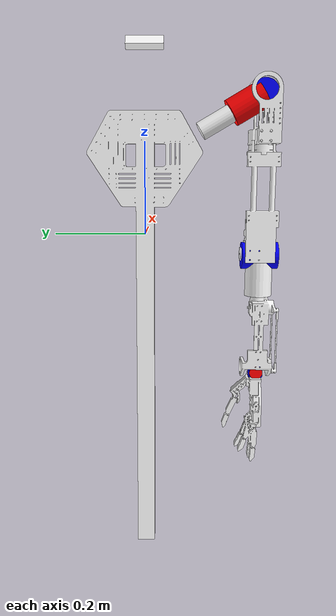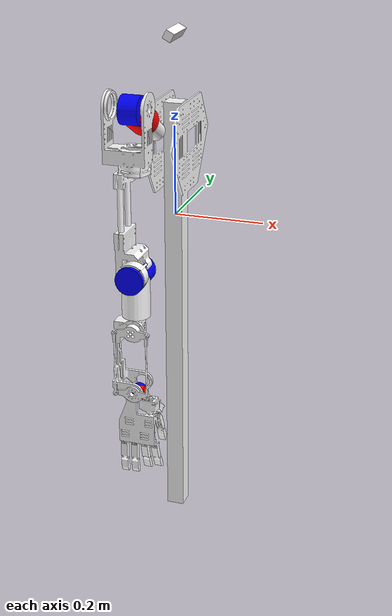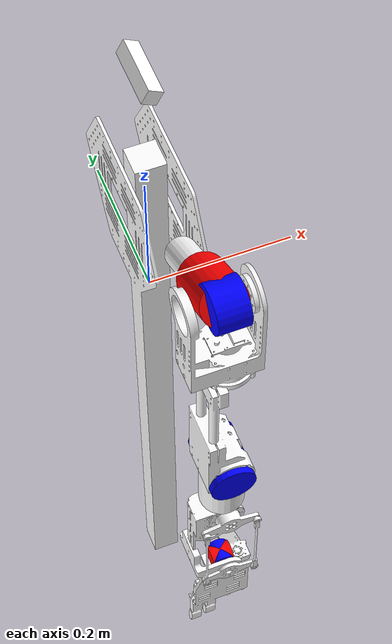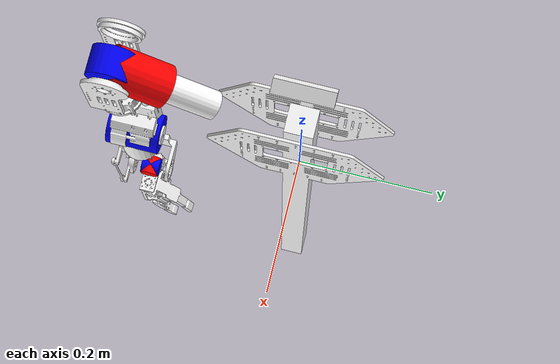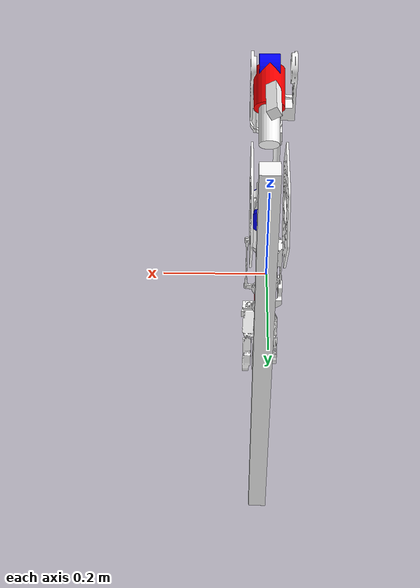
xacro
<?xml version="1.0"?>

<robot name="rx1" xmlns:xacro="http://ros.org/wiki/xacro">
    <xacro:property name="pi" value="3.1415" />
    <xacro:property name="motor_torque" value="50.0"/>
    <xacro:property name="motor_vec" value="15"/>

    <material name="red">
        <color rgba="1 0 0 1"/>
    </material>

    <material name="white">
        <color rgba="1 1 1 1"/>
    </material>

    <material name="blue">
        <color rgba="0 0 1 1"/>
    </material>

    <xacro:macro name="default_inertial" params="mass">
        <inertial>
            <mass value="${mass}" />
            <inertia ixx="1.0" ixy="0.0" ixz="0.0" iyy="1.0" iyz="0.0" izz="1.0" />
        </inertial>
    </xacro:macro>

    <link name="base_link">
        <inertial>
            <mass value="10.0" />
            <inertia ixx="0.1" ixy="0.0" ixz="0.0" iyy="0.04" iyz="0.0" izz="0.2" />
            <!--inertia ixx="1" ixy="0.0" ixz="0.0" iyy="1" iyz="0.0" izz="1" /-->
        </inertial>

        <visual>
            <geometry>
                <box size="0.02 0.02 0.5" />
            </geometry>
            <material name="white"/>
        </visual>
        <collision>
            <geometry>
                <box size="0.02 0.02 0.5" />
            </geometry>
        </collision>
    </link>

    <link name="camera_link">
        <inertial>
            <mass value="0.05" />
            <inertia ixx="4.16666667e-06" ixy="0.0" ixz="0.0" iyy="6.6666666667e-6" iyz="0.0" izz="04.16666667e-06" />
        </inertial>
        <visual>
            <geometry>
                <box size="0.02 0.08 0.02" />
            </geometry>
            <origin rpy="0 0 0" xyz="0 0 0"/>
            <material name="white"/>
        </visual>
        <collision>
            <geometry>
                <box size="0.03 0.12 0.02" />
            </geometry>
            <origin rpy="0 0 0" xyz="0 0 0"/>
        </collision>
    </link>
    <joint name="base2camera_joint" type="fixed">
        <origin xyz="0 0 0.40" rpy="0 0.5 0" />
        <parent link="base_link" />
        <child link="camera_link" />
    </joint>

    <link name="camera_color_optical_frame">
        <visual>
            <geometry>
                <box size="0.01 0.01 0.01" />
            </geometry>
            <origin rpy="0 0 0" xyz="0 0 0"/>
            <material name="white"/>
        </visual>
    </link>
    <joint name="camera2camera_joint" type="fixed">
        <origin xyz="0 0 0" rpy="-1.57 0 -1.57" />
        <parent link="camera_link" />
        <child link="camera_color_optical_frame" />
    </joint>

    <link name="torso_link">
        <inertial>
            <mass value="0.05" />
            <inertia ixx="4.16666667e-06" ixy="0.0" ixz="0.0" iyy="6.6666666667e-6" iyz="0.0" izz="04.16666667e-06" />
        </inertial>
        <visual>
            <geometry>
                <!--box size="0.03 0.12 0.02" /-->
                <mesh filename="package://rx1_description/meshes/torso_link_v2.stl"/>
            </geometry>
            <origin rpy="0 0 0" xyz="0 0 0"/>
            <material name="white"/>
        </visual>
        <collision>
            <geometry>
                <box size="0.03 0.12 0.02" />
            </geometry>
            <origin rpy="0 0 0" xyz="0 0 0"/>
        </collision>
    </link>
    <joint name="base2torso_joint" type="fixed">
        <origin xyz="0 0 0.26" rpy="0 0 0" />
        <parent link="base_link" />
        <child link="torso_link" />
    </joint>

    <link name="right_shoul_base_link">
        <inertial>
            <mass value="0.05" />
            <inertia ixx="4.16666667e-06" ixy="0.0" ixz="0.0" iyy="6.6666666667e-6" iyz="0.0" izz="04.16666667e-06" />
        </inertial>

        <visual>
            <geometry>
                <cylinder length="0.075" radius="0.02" />
            </geometry>
            <origin rpy="0 0 0" xyz="0 0 0.0375"/>
            <material name="white"/>
        </visual>
        <collision>
            <geometry>
                <cylinder length="0.075" radius="0.02" />
            </geometry>
            <origin rpy="0 0 0" xyz="0 0 0.0375"/>
        </collision>
    </link>
    <joint name="torso2right_shoul_base_joint" type="fixed">
        <origin xyz="0 -0.12 -0.04" rpy="${0.3333*pi} 0 0" />
        <parent link="torso_link" />
        <child link="right_shoul_base_link" />
    </joint>

    <link name="right_shoul_link">
        <visual>
            <geometry>
                <cylinder length="0.08" radius="0.03" />
            </geometry>
            <origin rpy="0 0 0" xyz="0 0 0.04"/>
            <material name="red"/>
        </visual>
        <collision>
            <geometry>
                <cylinder length="0.08" radius="0.03" />
            </geometry>
            <origin rpy="0 0 0" xyz="0 0 0.04"/>
        </collision>
    </link>
    <joint name="right_shoul_base2shoul_joint" type="revolute">
        <axis xyz="0 0 1" />
        <limit effort="${motor_torque}" lower="${-0.8*pi}" upper="${0.8*pi}" velocity="${motor_vec}"/>
        <origin xyz="0 0 0.075" rpy="0 0 0" />
        <parent link="right_shoul_base_link" />
        <child link="right_shoul_link" />
    </joint>

    <link name="right_shoul_rot_link">
        <visual>
            <geometry>
                <cylinder length="0.04" radius="0.03" />
            </geometry>
            <origin rpy="0 ${0.5*pi} 0" xyz="0 0 0"/>
            <material name="blue"/>
        </visual>
        <collision>
            <geometry>
                <cylinder length="0.04" radius="0.03" />
            </geometry>
            <origin rpy="0 ${0.5*pi} 0" xyz="0 0 0"/>
        </collision>
    </link>
    <joint name="right_shoul2shoul_rot_joint" type="revolute">
        <axis xyz="1 0 0" />
        <limit effort="${motor_torque}" lower="${-0.5*pi}" upper="${0.16*pi}" velocity="${motor_vec}"/>
        <origin xyz="0 0 0.08" rpy="${-0.3333*pi} 0 0" />
        <parent link="right_shoul_link" />
        <child link="right_shoul_rot_link" />
    </joint>

    <link name="right_upper_arm_link">
        <visual>
            <geometry>
                <!--cylinder length="0.085" radius="0.015" /-->
                <mesh filename="package://rx1_description/meshes/right_arm/right_upper_arm_link.stl"/>
            </geometry>
            <origin rpy="0 0 0" xyz="0 0 0"/>
            <material name="white"/>
        </visual>
        <collision>
            <geometry>
                <!--cylinder length="0.085" radius="0.015" /-->
                <mesh filename="package://rx1_description/meshes/right_arm/right_upper_arm_link.stl"/>
            </geometry>
            <origin rpy="0 0 0" xyz="0 0 0"/>
        </collision>
    </link>
    <joint name="right_shoul_rot2upper_arm_joint" type="fixed">
        <origin xyz="0 0 -0.0625" rpy="0 0 0" />
        <parent link="right_shoul_rot_link" />
        <child link="right_upper_arm_link" />
    </joint>

    <link name="right_armrot_link">
        <visual>
            <geometry>
                <!--cylinder length="0.22" radius="0.03" /-->
                <mesh filename="package://rx1_description/meshes/right_arm/right_elbow_link.stl"/>
            </geometry>
            <origin rpy="0 0 0" xyz="0 0 -0.11"/>
            <material name="white"/>
        </visual>
        <collision>
            <geometry>
                <cylinder length="0.22" radius="0.03" />
            </geometry>
            <origin rpy="0 0 0" xyz="0 0 -0.11"/>
        </collision>
    </link>
    <joint name="right_arm2armrot_joint" type="revolute">
        <axis xyz="0 0 1" />
        <limit effort="${motor_torque}" lower="${-0.5*pi}" upper="${0.5*pi}" velocity="${motor_vec}"/>
        <origin xyz="0 0 -0.0625" rpy="0 0 0" />
        <parent link="right_upper_arm_link" />
        <child link="right_armrot_link" />
    </joint>

    <link name="elbow_link">
        <visual>
            <geometry>
                <cylinder length="0.08" radius="0.03" />
            </geometry>
            <origin rpy="0 ${0.5*pi} -${0.5*pi}" xyz="0 0 0"/>
            <material name="blue"/>
        </visual>
        <collision>
            <geometry>
                <cylinder length="0.08" radius="0.03" />
            </geometry>
            <origin rpy="0 ${0.5*pi} -${0.5*pi}" xyz="0 0 0"/>
        </collision>
    </link>
    <joint name="right_armrot2elbow_joint" type="revolute">
        <axis xyz="0 1 0" />
        <limit effort="${motor_torque}" lower="${-0.7*pi}" upper="0" velocity="${motor_vec}"/>
        <origin xyz="0 0 -0.22" rpy="0 0 0" />
        <parent link="right_armrot_link" />
        <child link="elbow_link" />
    </joint>

     <link name="forearm_link">
        <visual>
            <geometry>
                <cylinder length="0.09" radius="0.03" />
            </geometry>
            <origin rpy="0 0 0" xyz="0 0 0"/>
            <material name="white"/>
        </visual>
        <collision>
            <geometry>
                <cylinder length="0.09" radius="0.03" />
            </geometry>
            <origin rpy="0 0 0" xyz="0 0 0"/>
        </collision>
    </link>
    <joint name="elbow2forearm_joint" type="fixed">
        <origin xyz="0 0 -0.045" rpy="0 0 0" />
        <parent link="elbow_link" />
        <child link="forearm_link" />
    </joint>

    <link name="forearmrot_link">
        <visual>
            <geometry>
                <!--cylinder length="0.18" radius="0.015" /-->
                <mesh filename="package://rx1_description/meshes/right_arm/right_forearm_link.stl"/>
            </geometry>
            <origin rpy="0 0 0" xyz="0 0 -0.09"/>
            <material name="white"/>
        </visual>
        <collision>
            <geometry>
                <cylinder length="0.18" radius="0.015" />
            </geometry>
            <origin rpy="0 0 0" xyz="0 0 -0.09"/>
        </collision>
    </link>
    <joint name="right_forearm2forearmrot_joint" type="revolute">
        <axis xyz="0 0 1" />
        <limit effort="${motor_torque}" lower="${-0.5*pi}" upper="${0.5*pi}" velocity="${motor_vec}"/>
        <origin xyz="0 0 -0.045" rpy="0 0 0" />
        <parent link="forearm_link" />
        <child link="forearmrot_link" />
    </joint>

    <link name="right_forearm_pitch_link">
        <visual>
            <geometry>
                <cylinder length="0.03" radius="0.015" />
            </geometry>
            <origin rpy="${0.5*pi} 0 0" xyz="0 0 0"/>
            <material name="blue"/>
        </visual>
        <collision>
            <geometry>
                <cylinder length="0.03" radius="0.01" />
            </geometry>
            <origin rpy="${0.5*pi} 0 0" xyz="0 0 0"/>
        </collision>
    </link>
    <joint name="right_forearmrot2forearm_pitch_joint" type="revolute">
        <axis xyz="0 1 0" />
        <limit effort="${motor_torque}" lower="${-0.25*pi}" upper="${0.25*pi}" velocity="${motor_vec}"/>
        <origin xyz="0 0 -0.18" rpy="0 0 0" />
        <parent link="forearmrot_link" />
        <child link="right_forearm_pitch_link" />
    </joint>

    <link name="right_forearm_roll_link">
        <visual>
            <geometry>
                <cylinder length="0.03" radius="0.015" />
            </geometry>
            <origin rpy="0 ${0.5*pi} 0" xyz="0 0 0"/>
            <material name="red"/>
        </visual>
        <collision>
            <geometry>
                <cylinder length="0.03" radius="0.01" />
            </geometry>
            <origin rpy="0 ${0.5*pi} 0" xyz="0 0 0"/>
        </collision>
    </link>
    <joint name="right_forearm_pitch2forearm_roll_joint" type="revolute">
        <axis xyz="1 0 0" />
        <limit effort="${motor_torque}" lower="${-0.25*pi}" upper="${0.25*pi}" velocity="${motor_vec}"/>
        <origin xyz="0 0 0" rpy="0 0 0" />
        <parent link="right_forearm_pitch_link" />
        <child link="right_forearm_roll_link" />
    </joint>

    <link name="right_hand_link">
        <visual>
            <geometry>
                <!--box size="0.04 0.02 0.12" /-->
                <mesh filename="package://rx1_description/meshes/right_arm/right_hand_link.stl"/>
            </geometry>
            <origin rpy="0 0 0" xyz="0 0 0"/>
            <material name="white"/>
        </visual>
        <collision>
            <geometry>
                <box size="0.04 0.02 0.12" />
            </geometry>
            <origin rpy="0 0 0" xyz="0 0 0"/>
        </collision>
    </link>
    <joint name="right_forearm_roll2hand_joint" type="fixed">
        <origin xyz="0 0 -0.1" rpy="0 0 0" />
        <parent link="right_forearm_roll_link" />
        <child link="right_hand_link" />
    </joint>

</robot>
